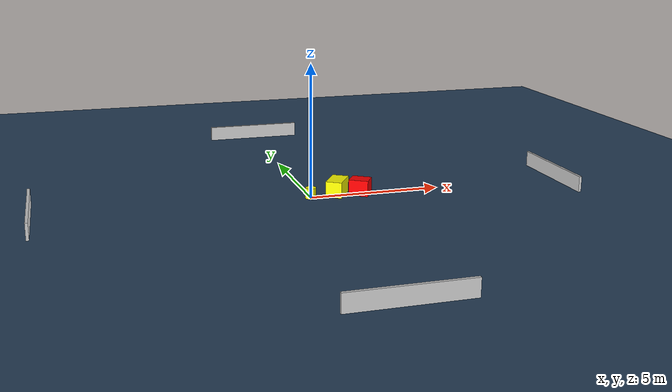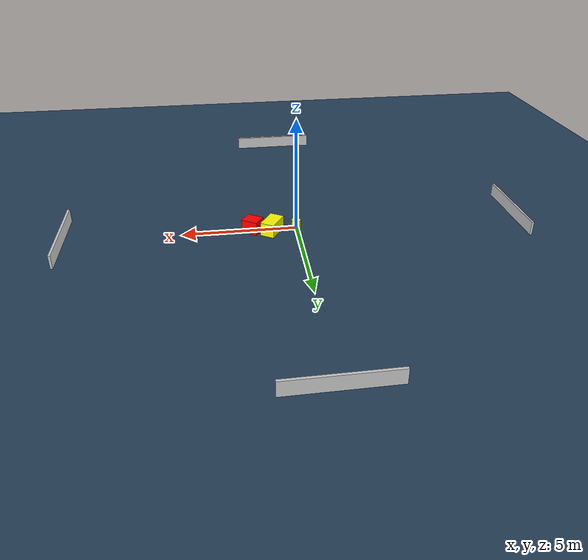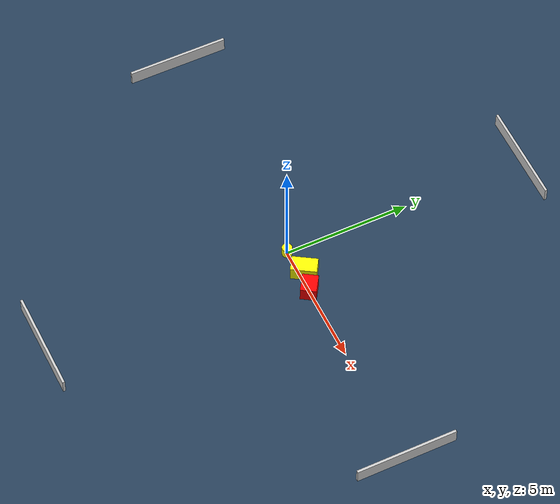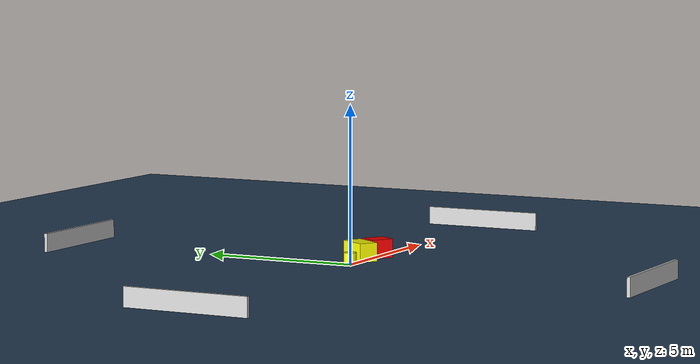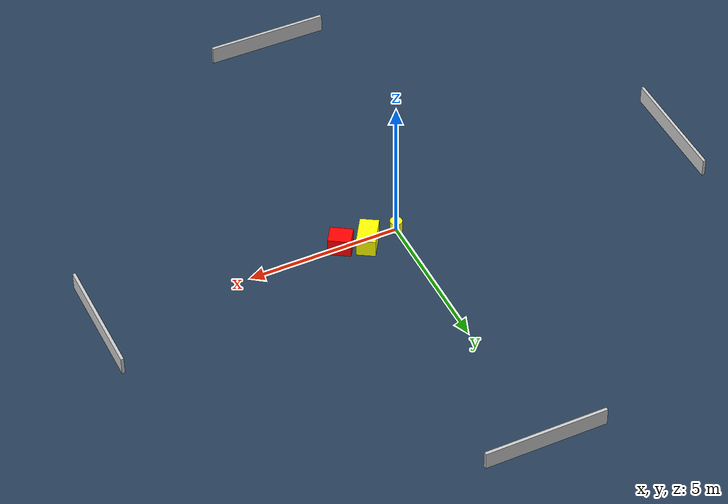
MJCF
<?xml version="1.0" ?>
<mujoco model="generated_environment">
  <option timestep="0.01" integrator="RK4" cone="elliptic"/>
  <default>
    <geom density="1"/>
  </default>
  <asset>
    <texture builtin="gradient" height="3072" name="skybox" rgb1="0.3 0.5 0.7" rgb2="0 0 0" type="skybox" width="512"/>
    <texture builtin="checker" height="300" name="groundplane" rgb1="0.2 0.3 0.4" rgb2="0.1 0.2 0.3" type="2d" width="300"/>
    <material name="groundplane" reflectance="0.2" texrepeat="5 5" texture="groundplane"/>
  </asset>
  <worldbody>
    <light dir="0 0 -1" directional="true" pos="0 0 1.5"/>
    <geom condim="3" friction="0.5 0.005 0.001" material="groundplane" name="floor" pos="0 0 0" size="0 0 0.05" type="plane"/>
    <body name="walls">
      <geom name="wall_1" condim="4" pos="-10.0 0.0 0.3" rgba="0.800000011920929 0.800000011920929 0.800000011920929 1.0" size="0.05 2.0 0.3" type="box"/>
      <geom name="wall_2" condim="4" pos="10.0 0.0 0.3" rgba="0.800000011920929 0.800000011920929 0.800000011920929 1.0" size="0.05 2.0 0.3" type="box"/>
      <geom name="wall_3" condim="4" pos="0.0 -10.0 0.3" rgba="0.800000011920929 0.800000011920929 0.800000011920929 1.0" size="2.0 0.05 0.3" type="box"/>
      <geom name="wall_4" condim="4" pos="0.0 10.0 0.3" rgba="0.800000011920929 0.800000011920929 0.800000011920929 1.0" size="2.0 0.05 0.3" type="box"/>
    </body>
    <body name="robot">
      <joint name="joint_x" type="slide" pos="0 0 0" axis="1 0 0"/>
      <joint name="joint_y" type="slide" pos="0 0 0" axis="0 1 0"/>
      <geom name="robot" type="cylinder" pos="0.0 0.0 0.2" size="0.2 0.2 0.0" mass="5.0" friction="1.0 0.005 0.0001" condim="4" rgba="1.0 1.0 0.0 1.0"/>
    </body>
    <body name="obstacle_1_movable">
      <geom name="obstacle_1_movable" condim="4" pos="1.0804585523731818 0.1986674764501214 0.3" euler="0 0 327.8604941563864" friction="0.0 0.005 0.001" rgba="1.0 1.0 0.0 1.0" size="0.3068954408165864 0.506526805989888 0.3" type="box" mass="0.1"/>
      <joint type="free"/>
    </body>
    <body name="obstacle_2_static">
      <geom name="obstacle_2_static" condim="4" pos="1.9249797842852538 0.005162791942864584 0.3" euler="0 0 237.08193983176182" friction="0.0 0.005 0.001" rgba="1.0 0.0 0.0 1.0" size="0.3107847924806215 0.3703138035754566 0.3" type="box"/>
    </body>
  </worldbody>
  <actuator>
    <motor name="actuator_x" joint="joint_x" gear="1" ctrlrange="-1 1"/>
    <motor name="actuator_y" joint="joint_y" gear="1" ctrlrange="-1 1"/>
  </actuator>
</mujoco>
